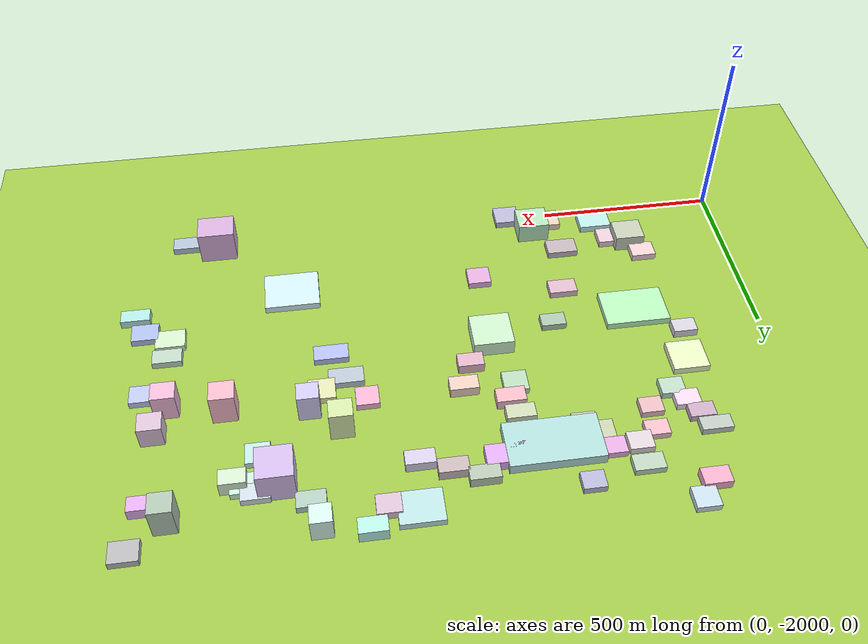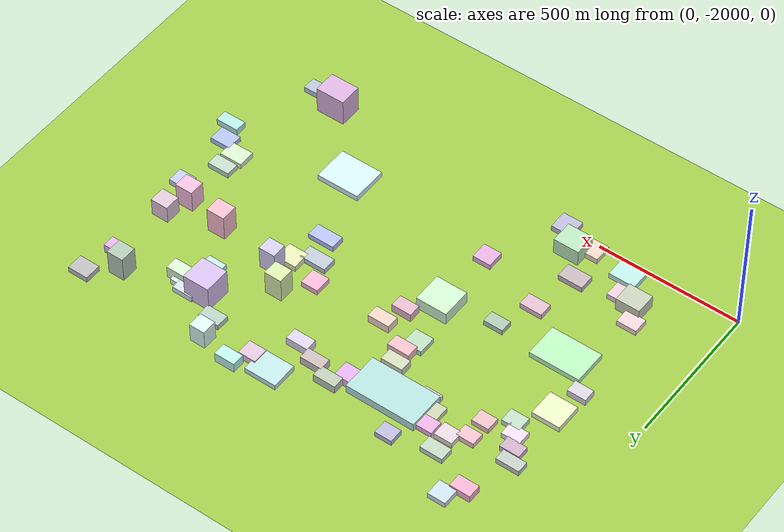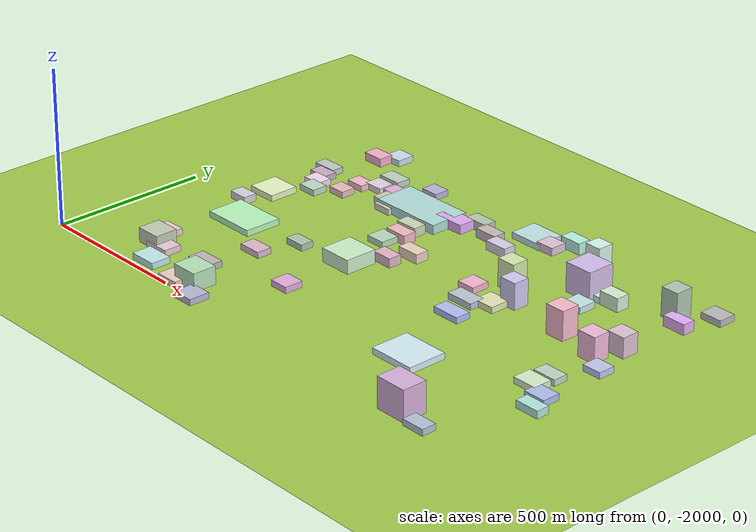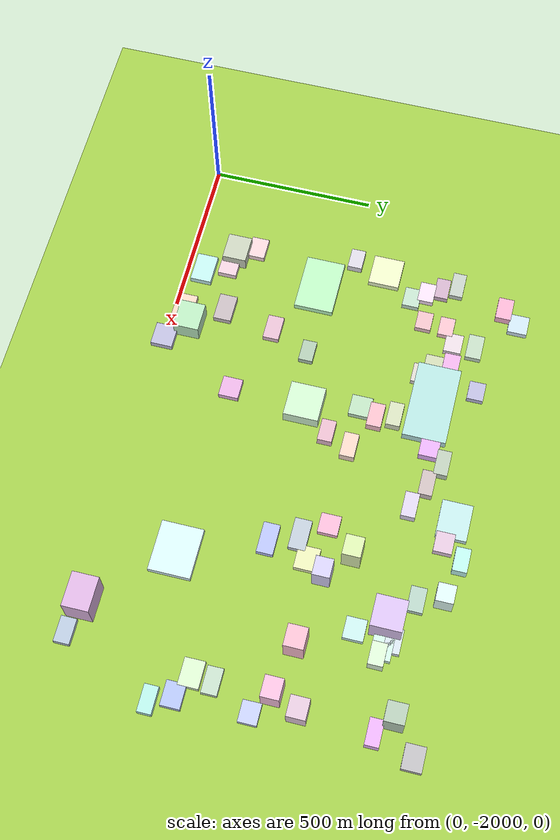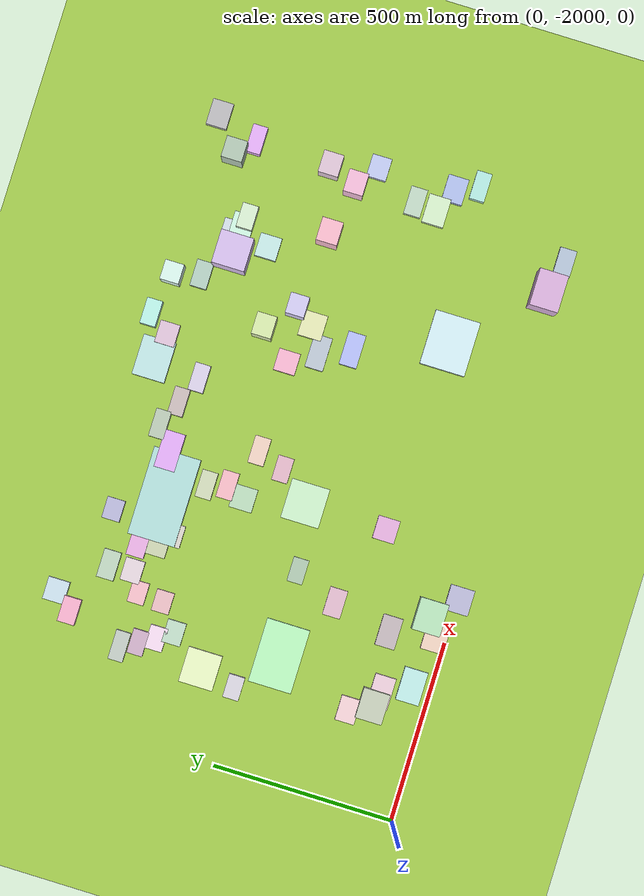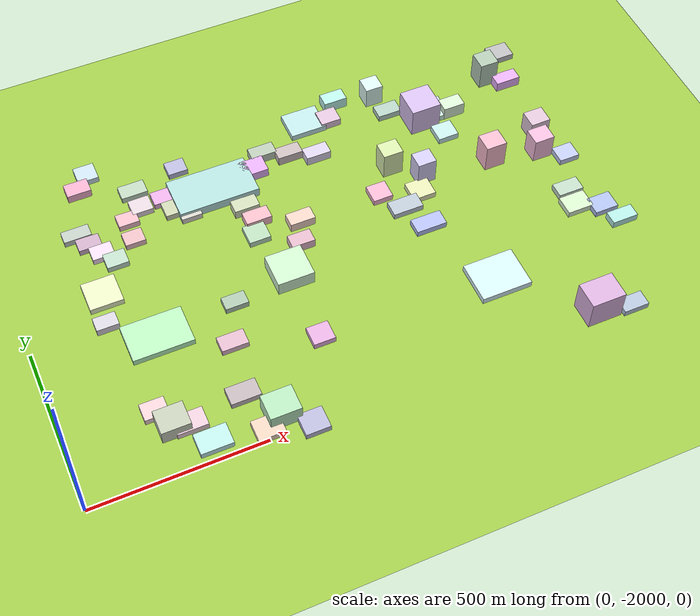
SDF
<sdf version="1.9">
 <world name="city_map">
  <model name="ground_plane">
   <static>1</static>
   <link name="link">
    <collision name="collision">
     <geometry><plane><normal>0 0 1</normal><size>11000 11000</size></plane></geometry>
    </collision>
    <visual name="visual">
     <geometry><plane><normal>0 0 1</normal><size>11000 11000</size></plane></geometry>
     <material>
      <ambient>0.551 0.712 0.210 1</ambient>
      <diffuse>0.651 0.812 0.310 1</diffuse>
      <specular>0.1 0.1 0.05 1</specular>
     </material>
    </visual>
   </link>
  </model>
  <model name="building_885923966">
   <static>1</static>
   <pose>655.6731077006962 -1157.885743891491 15.0 0 0 0</pose>
   <link name="link">
    <collision name="collision">
     <geometry><box><size>245.44319999976238 131.7379915772526 30.0</size></box></geometry>
    </collision>
    <visual name="visual">
     <cast_shadows>false</cast_shadows>
     <geometry><box><size>245.44319999976238 131.7379915772526 30.0</size></box></geometry>
     <material>
      <ambient>0.619 0.794 0.780 1</ambient>
      <diffuse>0.719 0.894 0.880 1</diffuse>
      <specular>0.216 0.268 0.264 1</specular>
      <emissive>0.01 0.01 0.01 1</emissive>
     </material>
    </visual>
   </link>
  </model>
  <model name="building_51997033">
   <static>1</static>
   <pose>336.8500381687066 -1580.2356809911882 10.0 0 0 0</pose>
   <link name="link">
    <collision name="collision">
     <geometry><box><size>177.47789999973662 120.40511027394761 20</size></box></geometry>
    </collision>
    <visual name="visual">
     <cast_shadows>false</cast_shadows>
     <geometry><box><size>177.47789999973662 120.40511027394761 20</size></box></geometry>
     <material>
      <ambient>0.646 0.892 0.667 1</ambient>
      <diffuse>0.746 0.992 0.767 1</diffuse>
      <specular>0.224 0.298 0.230 1</specular>
      <emissive>0.01 0.01 0.01 1</emissive>
     </material>
    </visual>
   </link>
  </model>
  <model name="building_834223518">
   <static>1</static>
   <pose>1280.9858252648842 -1774.0028959987128 10.0 0 0 0</pose>
   <link name="link">
    <collision name="collision">
     <geometry><box><size>152.26980000012702 126.23402840912682 20</size></box></geometry>
    </collision>
    <visual name="visual">
     <cast_shadows>false</cast_shadows>
     <geometry><box><size>152.26980000012702 126.23402840912682 20</size></box></geometry>
     <material>
      <ambient>0.752 0.861 0.890 1</ambient>
      <diffuse>0.852 0.961 0.990 1</diffuse>
      <specular>0.256 0.288 0.297 1</specular>
      <emissive>0.01 0.01 0.01 1</emissive>
     </material>
    </visual>
   </link>
  </model>
  <model name="building_282515272">
   <static>1</static>
   <pose>750.0463463687053 -1526.893520957059 22.54410202336998 0 0 0</pose>
   <link name="link">
    <collision name="collision">
     <geometry><box><size>109.7761254570354 106.22699999996144 45.08820404673996</size></box></geometry>
    </collision>
    <visual name="visual">
     <cast_shadows>false</cast_shadows>
     <geometry><box><size>109.7761254570354 106.22699999996144 45.08820404673996</size></box></geometry>
     <material>
      <ambient>0.726 0.868 0.721 1</ambient>
      <diffuse>0.826 0.968 0.821 1</diffuse>
      <specular>0.248 0.290 0.246 1</specular>
      <emissive>0.01 0.01 0.01 1</emissive>
     </material>
    </visual>
   </link>
  </model>
  <model name="building_90675372">
   <static>1</static>
   <pose>1004.8485376697569 -1019.4470012184622 10.0 0 0 0</pose>
   <link name="link">
    <collision name="collision">
     <geometry><box><size>112.64937062081091 91.33080000018623 20</size></box></geometry>
    </collision>
    <visual name="visual">
     <cast_shadows>false</cast_shadows>
     <geometry><box><size>112.64937062081091 91.33080000018623 20</size></box></geometry>
     <material>
      <ambient>0.675 0.822 0.822 1</ambient>
      <diffuse>0.775 0.922 0.922 1</diffuse>
      <specular>0.232 0.277 0.277 1</specular>
      <emissive>0.01 0.01 0.01 1</emissive>
     </material>
    </visual>
   </link>
  </model>
  <model name="building_26250149">
   <static>1</static>
   <pose>241.06221409688132 -1387.7989173229182 10.0 0 0 0</pose>
   <link name="link">
    <collision name="collision">
     <geometry><box><size>97.76879999970589 95.0312720382881 20</size></box></geometry>
    </collision>
    <visual name="visual">
     <cast_shadows>false</cast_shadows>
     <geometry><box><size>97.76879999970589 95.0312720382881 20</size></box></geometry>
     <material>
      <ambient>0.836 0.892 0.693 1</ambient>
      <diffuse>0.936 0.992 0.793 1</diffuse>
      <specular>0.281 0.298 0.238 1</specular>
      <emissive>0.01 0.01 0.01 1</emissive>
     </material>
    </visual>
   </link>
  </model>
  <model name="building_274391688">
   <static>1</static>
   <pose>1340.412388567909 -1141.6744502109484 47.136182500253476 0 0 0</pose>
   <link name="link">
    <collision name="collision">
     <geometry><box><size>93.10679999964577 91.6483943964673 94.27236500050695</size></box></geometry>
    </collision>
    <visual name="visual">
     <cast_shadows>false</cast_shadows>
     <geometry><box><size>93.10679999964577 91.6483943964673 94.27236500050695</size></box></geometry>
     <material>
      <ambient>0.759 0.667 0.849 1</ambient>
      <diffuse>0.859 0.767 0.949 1</diffuse>
      <specular>0.258 0.230 0.285 1</specular>
      <emissive>0.01 0.01 0.01 1</emissive>
     </material>
    </visual>
   </link>
  </model>
  <model name="building_586973007">
   <static>1</static>
   <pose>1486.3382346132405 -1982.8128180515678 48.82688103741594 0 0 0</pose>
   <link name="link">
    <collision name="collision">
     <geometry><box><size>102.76611107530361 79.48709999980252 97.65376207483187</size></box></geometry>
    </collision>
    <visual name="visual">
     <cast_shadows>false</cast_shadows>
     <geometry><box><size>102.76611107530361 79.48709999980252 97.65376207483187</size></box></geometry>
     <material>
      <ambient>0.770 0.613 0.784 1</ambient>
      <diffuse>0.870 0.713 0.884 1</diffuse>
      <specular>0.261 0.214 0.265 1</specular>
      <emissive>0.01 0.01 0.01 1</emissive>
     </material>
    </visual>
   </link>
  </model>
  <model name="building_772615340">
   <static>1</static>
   <pose>557.6522303663056 -1937.3966500992888 29.48203873487184 0 0 0</pose>
   <link name="link">
    <collision name="collision">
     <geometry><box><size>89.44379999942953 78.06862355813965 58.96407746974368</size></box></geometry>
    </collision>
    <visual name="visual">
     <cast_shadows>false</cast_shadows>
     <geometry><box><size>89.44379999942953 78.06862355813965 58.96407746974368</size></box></geometry>
     <material>
      <ambient>0.639 0.818 0.658 1</ambient>
      <diffuse>0.739 0.918 0.758 1</diffuse>
      <specular>0.222 0.275 0.227 1</specular>
      <emissive>0.01 0.01 0.01 1</emissive>
     </material>
    </visual>
   </link>
  </model>
  <model name="building_3899254">
   <static>1</static>
   <pose>283.17575084130544 -1860.0526714210832 23.62983071968444 0 0 0</pose>
   <link name="link">
    <collision name="collision">
     <geometry><box><size>83.85128254072615 73.48199999982086 47.25966143936888</size></box></geometry>
    </collision>
    <visual name="visual">
     <cast_shadows>false</cast_shadows>
     <geometry><box><size>83.85128254072615 73.48199999982086 47.25966143936888</size></box></geometry>
     <material>
      <ambient>0.693 0.723 0.644 1</ambient>
      <diffuse>0.793 0.823 0.744 1</diffuse>
      <specular>0.238 0.247 0.223 1</specular>
      <emissive>0.01 0.01 0.01 1</emissive>
     </material>
    </visual>
   </link>
  </model>
  <model name="building_665565411">
   <static>1</static>
   <pose>778.8359824664225 -1134.9715088391104 15.0 0 0 0</pose>
   <link name="link">
    <collision name="collision">
     <geometry><box><size>104.92829999977005 57.72782470868287 30.0</size></box></geometry>
    </collision>
    <visual name="visual">
     <cast_shadows>false</cast_shadows>
     <geometry><box><size>104.92829999977005 57.72782470868287 30.0</size></box></geometry>
     <material>
      <ambient>0.808 0.601 0.891 1</ambient>
      <diffuse>0.908 0.701 0.991 1</diffuse>
      <specular>0.273 0.210 0.297 1</specular>
      <emissive>0.01 0.01 0.01 1</emissive>
     </material>
    </visual>
   </link>
  </model>
  <model name="building_292497935">
   <static>1</static>
   <pose>364.0755688910507 -1946.4264194396712 10.0 0 0 0</pose>
   <link name="link">
    <collision name="collision">
     <geometry><box><size>92.40750000014941 64.70386823569454 20</size></box></geometry>
    </collision>
    <visual name="visual">
     <cast_shadows>false</cast_shadows>
     <geometry><box><size>92.40750000014941 64.70386823569454 20</size></box></geometry>
     <material>
      <ambient>0.667 0.847 0.833 1</ambient>
      <diffuse>0.767 0.947 0.933 1</diffuse>
      <specular>0.230 0.284 0.280 1</specular>
      <emissive>0.01 0.01 0.01 1</emissive>
     </material>
    </visual>
   </link>
  </model>
  <model name="building_149548858">
   <static>1</static>
   <pose>1406.4789679360867 -1140.9563163107252 10.0 0 0 0</pose>
   <link name="link">
    <collision name="collision">
     <geometry><box><size>95.62649999990924 59.410068002270386 20</size></box></geometry>
    </collision>
    <visual name="visual">
     <cast_shadows>false</cast_shadows>
     <geometry><box><size>95.62649999990924 59.410068002270386 20</size></box></geometry>
     <material>
      <ambient>0.733 0.891 0.808 1</ambient>
      <diffuse>0.833 0.991 0.908 1</diffuse>
      <specular>0.250 0.297 0.272 1</specular>
      <emissive>0.01 0.01 0.01 1</emissive>
     </material>
    </visual>
   </link>
  </model>
  <model name="building_43439514">
   <static>1</static>
   <pose>325.4234464116073 -1872.29053794742 10.0 0 0 0</pose>
   <link name="link">
    <collision name="collision">
     <geometry><box><size>87.98969999978823 57.84461864287709 20</size></box></geometry>
    </collision>
    <visual name="visual">
     <cast_shadows>false</cast_shadows>
     <geometry><box><size>87.98969999978823 57.84461864287709 20</size></box></geometry>
     <material>
      <ambient>0.840 0.726 0.775 1</ambient>
      <diffuse>0.940 0.826 0.875 1</diffuse>
      <specular>0.282 0.248 0.262 1</specular>
      <emissive>0.01 0.01 0.01 1</emissive>
     </material>
    </visual>
   </link>
  </model>
  <model name="building_329325230">
   <static>1</static>
   <pose>507.7307768161253 -1969.6751606032083 10.0 0 0 0</pose>
   <link name="link">
    <collision name="collision">
     <geometry><box><size>77.76527297631499 63.62520000057259 20</size></box></geometry>
    </collision>
    <visual name="visual">
     <cast_shadows>false</cast_shadows>
     <geometry><box><size>77.76527297631499 63.62520000057259 20</size></box></geometry>
     <material>
      <ambient>0.860 0.750 0.677 1</ambient>
      <diffuse>0.960 0.850 0.777 1</diffuse>
      <specular>0.288 0.255 0.233 1</specular>
      <emissive>0.01 0.01 0.01 1</emissive>
     </material>
    </visual>
   </link>
  </model>
  <model name="building_492137236">
   <static>1</static>
   <pose>1614.540512678571 -1632.9368925504778 10.0 0 0 0</pose>
   <link name="link">
    <collision name="collision">
     <geometry><box><size>80.04352668445246 60.62819999946356 20</size></box></geometry>
    </collision>
    <visual name="visual">
     <cast_shadows>false</cast_shadows>
     <geometry><box><size>80.04352668445246 60.62819999946356 20</size></box></geometry>
     <material>
      <ambient>0.764 0.865 0.722 1</ambient>
      <diffuse>0.864 0.965 0.822 1</diffuse>
      <specular>0.259 0.290 0.247 1</specular>
      <emissive>0.01 0.01 0.01 1</emissive>
     </material>
    </visual>
   </link>
  </model>
  <model name="building_83868060">
   <static>1</static>
   <pose>622.9773181012521 -2001.5847225839418 10.0 0 0 0</pose>
   <link name="link">
    <collision name="collision">
     <geometry><box><size>71.10346074487816 66.85530000046214 20</size></box></geometry>
    </collision>
    <visual name="visual">
     <cast_shadows>false</cast_shadows>
     <geometry><box><size>71.10346074487816 66.85530000046214 20</size></box></geometry>
     <material>
      <ambient>0.650 0.646 0.769 1</ambient>
      <diffuse>0.750 0.746 0.869 1</diffuse>
      <specular>0.225 0.224 0.261 1</specular>
      <emissive>0.01 0.01 0.01 1</emissive>
     </material>
    </visual>
   </link>
  </model>
  <model name="building_51533591">
   <static>1</static>
   <pose>1151.514503092457 -1440.9694946418651 10.0 0 0 0</pose>
   <link name="link">
    <collision name="collision">
     <geometry><box><size>93.13373706301033 50.882399999935046 20</size></box></geometry>
    </collision>
    <visual name="visual">
     <cast_shadows>false</cast_shadows>
     <geometry><box><size>93.13373706301033 50.882399999935046 20</size></box></geometry>
     <material>
      <ambient>0.660 0.704 0.751 1</ambient>
      <diffuse>0.760 0.804 0.851 1</diffuse>
      <specular>0.228 0.241 0.255 1</specular>
      <emissive>0.01 0.01 0.01 1</emissive>
     </material>
    </visual>
   </link>
  </model>
  <model name="building_885729434">
   <static>1</static>
   <pose>485.6572206805797 -1844.8780233309217 10.0 0 0 0</pose>
   <link name="link">
    <collision name="collision">
     <geometry><box><size>86.48615679808526 54.7007999996012 20</size></box></geometry>
    </collision>
    <visual name="visual">
     <cast_shadows>false</cast_shadows>
     <geometry><box><size>86.48615679808526 54.7007999996012 20</size></box></geometry>
     <material>
      <ambient>0.681 0.637 0.655 1</ambient>
      <diffuse>0.781 0.737 0.755 1</diffuse>
      <specular>0.234 0.221 0.226 1</specular>
      <emissive>0.01 0.01 0.01 1</emissive>
     </material>
    </visual>
   </link>
  </model>
  <model name="building_773361108">
   <static>1</static>
   <pose>1217.3259575790225 -1404.1665010802028 10.0 0 0 0</pose>
   <link name="link">
    <collision name="collision">
     <geometry><box><size>70.87350000009707 65.64923522007581 20</size></box></geometry>
    </collision>
    <visual name="visual">
     <cast_shadows>false</cast_shadows>
     <geometry><box><size>70.87350000009707 65.64923522007581 20</size></box></geometry>
     <material>
      <ambient>0.821 0.837 0.635 1</ambient>
      <diffuse>0.921 0.937 0.735 1</diffuse>
      <specular>0.276 0.281 0.221 1</specular>
      <emissive>0.01 0.01 0.01 1</emissive>
     </material>
    </visual>
   </link>
  </model>
  <model name="building_843778769">
   <static>1</static>
   <pose>1185.7341885848596 -1526.478820904895 10.0 0 0 0</pose>
   <link name="link">
    <collision name="collision">
     <geometry><box><size>93.1955999998948 49.31409842581816 20</size></box></geometry>
    </collision>
    <visual name="visual">
     <cast_shadows>false</cast_shadows>
     <geometry><box><size>93.1955999998948 49.31409842581816 20</size></box></geometry>
     <material>
      <ambient>0.630 0.669 0.897 1</ambient>
      <diffuse>0.730 0.769 0.997 1</diffuse>
      <specular>0.219 0.231 0.299 1</specular>
      <emissive>0.01 0.01 0.01 1</emissive>
     </material>
    </visual>
   </link>
  </model>
  <model name="building_447495902">
   <static>1</static>
   <pose>1693.7390217909217 -993.2008684340839 10.5 0 0 0</pose>
   <link name="link">
    <collision name="collision">
     <geometry><box><size>72.44969999958784 57.84105427578032 21.0</size></box></geometry>
    </collision>
    <visual name="visual">
     <cast_shadows>false</cast_shadows>
     <geometry><box><size>72.44969999958784 57.84105427578032 21.0</size></box></geometry>
     <material>
      <ambient>0.653 0.652 0.665 1</ambient>
      <diffuse>0.753 0.752 0.765 1</diffuse>
      <specular>0.226 0.225 0.229 1</specular>
      <emissive>0.01 0.01 0.01 1</emissive>
     </material>
    </visual>
   </link>
  </model>
  <model name="building_297966106">
   <static>1</static>
   <pose>1683.9591965992092 -1665.514146758331 10.0 0 0 0</pose>
   <link name="link">
    <collision name="collision">
     <geometry><box><size>72.7064919225762 57.22049999986467 20</size></box></geometry>
    </collision>
    <visual name="visual">
     <cast_shadows>false</cast_shadows>
     <geometry><box><size>72.7064919225762 57.22049999986467 20</size></box></geometry>
     <material>
      <ambient>0.611 0.672 0.850 1</ambient>
      <diffuse>0.711 0.772 0.950 1</diffuse>
      <specular>0.213 0.232 0.285 1</specular>
      <emissive>0.01 0.01 0.01 1</emissive>
     </material>
    </visual>
   </link>
  </model>
  <model name="building_223950437">
   <static>1</static>
   <pose>714.3866004936485 -1362.6101027905859 10.0 0 0 0</pose>
   <link name="link">
    <collision name="collision">
     <geometry><box><size>65.04056740771281 63.93600000026112 20</size></box></geometry>
    </collision>
    <visual name="visual">
     <cast_shadows>false</cast_shadows>
     <geometry><box><size>65.04056740771281 63.93600000026112 20</size></box></geometry>
     <material>
      <ambient>0.655 0.785 0.664 1</ambient>
      <diffuse>0.755 0.885 0.764 1</diffuse>
      <specular>0.226 0.265 0.229 1</specular>
      <emissive>0.01 0.01 0.01 1</emissive>
     </material>
    </visual>
   </link>
  </model>
  <model name="building_198737872">
   <static>1</static>
   <pose>747.170392949465 -1756.994903560671 10.0 0 0 0</pose>
   <link name="link">
    <collision name="collision">
     <geometry><box><size>64.04699999998087 60.45142050149066 20</size></box></geometry>
    </collision>
    <visual name="visual">
     <cast_shadows>false</cast_shadows>
     <geometry><box><size>64.04699999998087 60.45142050149066 20</size></box></geometry>
     <material>
      <ambient>0.812 0.606 0.790 1</ambient>
      <diffuse>0.912 0.706 0.890 1</diffuse>
      <specular>0.273 0.212 0.267 1</specular>
      <emissive>0.01 0.01 0.01 1</emissive>
     </material>
    </visual>
   </link>
  </model>
  <model name="building_381056021">
   <static>1</static>
   <pose>1385.871325881324 -1225.8036689910798 10.0 0 0 0</pose>
   <link name="link">
    <collision name="collision">
     <geometry><box><size>64.26854619081969 60.02880000034594 20</size></box></geometry>
    </collision>
    <visual name="visual">
     <cast_shadows>false</cast_shadows>
     <geometry><box><size>64.26854619081969 60.02880000034594 20</size></box></geometry>
     <material>
      <ambient>0.697 0.839 0.829 1</ambient>
      <diffuse>0.797 0.939 0.929 1</diffuse>
      <specular>0.239 0.282 0.279 1</specular>
      <emissive>0.01 0.01 0.01 1</emissive>
     </material>
    </visual>
   </link>
  </model>
  <model name="building_649586219">
   <static>1</static>
   <pose>517.901002560461 -1682.810676448399 10.0 0 0 0</pose>
   <link name="link">
    <collision name="collision">
     <geometry><box><size>78.11874961973984 49.1063999996868 20</size></box></geometry>
    </collision>
    <visual name="visual">
     <cast_shadows>false</cast_shadows>
     <geometry><box><size>78.11874961973984 49.1063999996868 20</size></box></geometry>
     <material>
      <ambient>0.800 0.651 0.723 1</ambient>
      <diffuse>0.900 0.751 0.823 1</diffuse>
      <specular>0.270 0.225 0.247 1</specular>
      <emissive>0.01 0.01 0.01 1</emissive>
     </material>
    </visual>
   </link>
  </model>
  <model name="building_954237924">
   <static>1</static>
   <pose>1466.1229231877285 -1374.890601307974 46.56002387992859 0 0 0</pose>
   <link name="link">
    <collision name="collision">
     <geometry><box><size>64.71299999987679 58.52119675202356 93.12004775985719</size></box></geometry>
    </collision>
    <visual name="visual">
     <cast_shadows>false</cast_shadows>
     <geometry><box><size>64.71299999987679 58.52119675202356 93.12004775985719</size></box></geometry>
     <material>
      <ambient>0.900 0.655 0.725 1</ambient>
      <diffuse>1.000 0.755 0.825 1</diffuse>
      <specular>0.300 0.226 0.247 1</specular>
      <emissive>0.01 0.01 0.01 1</emissive>
     </material>
    </visual>
   </link>
  </model>
  <model name="building_521137734">
   <static>1</static>
   <pose>436.37700498365183 -1068.5965884451662 10.0 0 0 0</pose>
   <link name="link">
    <collision name="collision">
     <geometry><box><size>79.29782852595308 47.67450000030493 20</size></box></geometry>
    </collision>
    <visual name="visual">
     <cast_shadows>false</cast_shadows>
     <geometry><box><size>79.29782852595308 47.67450000030493 20</size></box></geometry>
     <material>
      <ambient>0.670 0.758 0.673 1</ambient>
      <diffuse>0.770 0.858 0.773 1</diffuse>
      <specular>0.231 0.258 0.232 1</specular>
      <emissive>0.01 0.01 0.01 1</emissive>
     </material>
    </visual>
   </link>
  </model>
  <model name="building_932092404">
   <static>1</static>
   <pose>328.1378306926444 -953.1270817218816 10.0 0 0 0</pose>
   <link name="link">
    <collision name="collision">
     <geometry><box><size>62.21549999987275 59.67812148098055 20</size></box></geometry>
    </collision>
    <visual name="visual">
     <cast_shadows>false</cast_shadows>
     <geometry><box><size>62.21549999987275 59.67812148098055 20</size></box></geometry>
     <material>
      <ambient>0.718 0.800 0.849 1</ambient>
      <diffuse>0.818 0.900 0.949 1</diffuse>
      <specular>0.245 0.270 0.285 1</specular>
      <emissive>0.01 0.01 0.01 1</emissive>
     </material>
    </visual>
   </link>
  </model>
  <model name="building_585981795">
   <static>1</static>
   <pose>252.40545459541482 -1800.4640162320084 10.0 0 0 0</pose>
   <link name="link">
    <collision name="collision">
     <geometry><box><size>69.06654186878494 53.66850000015688 20</size></box></geometry>
    </collision>
    <visual name="visual">
     <cast_shadows>false</cast_shadows>
     <geometry><box><size>69.06654186878494 53.66850000015688 20</size></box></geometry>
     <material>
      <ambient>0.874 0.744 0.761 1</ambient>
      <diffuse>0.974 0.844 0.861 1</diffuse>
      <specular>0.292 0.253 0.258 1</specular>
      <emissive>0.01 0.01 0.01 1</emissive>
     </material>
    </visual>
   </link>
  </model>
  <model name="building_795210987">
   <static>1</static>
   <pose>1621.0704368313507 -1572.180013513026 10.0 0 0 0</pose>
   <link name="link">
    <collision name="collision">
     <geometry><box><size>78.5990999996784 46.34176278336739 20</size></box></geometry>
    </collision>
    <visual name="visual">
     <cast_shadows>false</cast_shadows>
     <geometry><box><size>78.5990999996784 46.34176278336739 20</size></box></geometry>
     <material>
      <ambient>0.680 0.771 0.699 1</ambient>
      <diffuse>0.780 0.871 0.799 1</diffuse>
      <specular>0.234 0.261 0.240 1</specular>
      <emissive>0.01 0.01 0.01 1</emissive>
     </material>
    </visual>
   </link>
  </model>
  <model name="building_709147309">
   <static>1</static>
   <pose>1102.1588562136244 -1366.2804004534398 10.0 0 0 0</pose>
   <link name="link">
    <collision name="collision">
     <geometry><box><size>60.61710000012255 59.838463500407514 20</size></box></geometry>
    </collision>
    <visual name="visual">
     <cast_shadows>false</cast_shadows>
     <geometry><box><size>60.61710000012255 59.838463500407514 20</size></box></geometry>
     <material>
      <ambient>0.890 0.637 0.745 1</ambient>
      <diffuse>0.990 0.737 0.845 1</diffuse>
      <specular>0.297 0.221 0.253 1</specular>
      <emissive>0.01 0.01 0.01 1</emissive>
     </material>
    </visual>
   </link>
  </model>
  <model name="building_781203244">
   <static>1</static>
   <pose>1582.0657837439587 -2007.6592416446827 10.0 0 0 0</pose>
   <link name="link">
    <collision name="collision">
     <geometry><box><size>75.73530000012596 46.67706275832728 20</size></box></geometry>
    </collision>
    <visual name="visual">
     <cast_shadows>false</cast_shadows>
     <geometry><box><size>75.73530000012596 46.67706275832728 20</size></box></geometry>
     <material>
      <ambient>0.628 0.688 0.768 1</ambient>
      <diffuse>0.728 0.788 0.868 1</diffuse>
      <specular>0.218 0.236 0.260 1</specular>
      <emissive>0.01 0.01 0.01 1</emissive>
     </material>
    </visual>
   </link>
  </model>
  <model name="building_436593931">
   <static>1</static>
   <pose>1681.3186051341538 -1450.3710256885224 10.0 0 0 0</pose>
   <link name="link">
    <collision name="collision">
     <geometry><box><size>62.954038995238 54.700800000389904 20</size></box></geometry>
    </collision>
    <visual name="visual">
     <cast_shadows>false</cast_shadows>
     <geometry><box><size>62.954038995238 54.700800000389904 20</size></box></geometry>
     <material>
      <ambient>0.680 0.716 0.869 1</ambient>
      <diffuse>0.780 0.816 0.969 1</diffuse>
      <specular>0.234 0.245 0.291 1</specular>
      <emissive>0.01 0.01 0.01 1</emissive>
     </material>
    </visual>
   </link>
  </model>
  <model name="building_903363906">
   <static>1</static>
   <pose>1261.508926626537 -1075.6063166224824 10.5 0 0 0</pose>
   <link name="link">
    <collision name="collision">
     <geometry><box><size>74.10359999998661 46.458775925187204 21.0</size></box></geometry>
    </collision>
    <visual name="visual">
     <cast_shadows>false</cast_shadows>
     <geometry><box><size>74.10359999998661 46.458775925187204 21.0</size></box></geometry>
     <material>
      <ambient>0.628 0.735 0.684 1</ambient>
      <diffuse>0.728 0.835 0.784 1</diffuse>
      <specular>0.218 0.251 0.235 1</specular>
      <emissive>0.01 0.01 0.01 1</emissive>
     </material>
    </visual>
   </link>
  </model>
  <model name="building_916105324">
   <static>1</static>
   <pose>735.6807318548769 -1312.0436815955945 15.0 0 0 0</pose>
   <link name="link">
    <collision name="collision">
     <geometry><box><size>76.7954354449597 44.8218000000935 30.0</size></box></geometry>
    </collision>
    <visual name="visual">
     <cast_shadows>false</cast_shadows>
     <geometry><box><size>76.7954354449597 44.8218000000935 30.0</size></box></geometry>
     <material>
      <ambient>0.883 0.655 0.699 1</ambient>
      <diffuse>0.983 0.755 0.799 1</diffuse>
      <specular>0.295 0.227 0.240 1</specular>
      <emissive>0.01 0.01 0.01 1</emissive>
     </material>
    </visual>
   </link>
  </model>
  <model name="building_589525663">
   <static>1</static>
   <pose>1646.159563274206 -1323.6844218630479 32.363455793384425 0 0 0</pose>
   <link name="link">
    <collision name="collision">
     <geometry><box><size>61.660500000485285 55.71000638921823 64.72691158676885</size></box></geometry>
    </collision>
    <visual name="visual">
     <cast_shadows>false</cast_shadows>
     <geometry><box><size>61.660500000485285 55.71000638921823 64.72691158676885</size></box></geometry>
     <material>
      <ambient>0.792 0.691 0.763 1</ambient>
      <diffuse>0.892 0.791 0.863 1</diffuse>
      <specular>0.268 0.237 0.259 1</specular>
      <emissive>0.01 0.01 0.01 1</emissive>
     </material>
    </visual>
   </link>
  </model>
  <model name="building_460170176">
   <static>1</static>
   <pose>1392.7964595226465 -1114.4444805995124 10.0 0 0 0</pose>
   <link name="link">
    <collision name="collision">
     <geometry><box><size>72.88259999991453 47.07382061064194 20</size></box></geometry>
    </collision>
    <visual name="visual">
     <cast_shadows>false</cast_shadows>
     <geometry><box><size>72.88259999991453 47.07382061064194 20</size></box></geometry>
     <material>
      <ambient>0.748 0.795 0.832 1</ambient>
      <diffuse>0.848 0.895 0.932 1</diffuse>
      <specular>0.254 0.268 0.280 1</specular>
      <emissive>0.01 0.01 0.01 1</emissive>
     </material>
    </visual>
   </link>
  </model>
  <model name="building_177703846">
   <static>1</static>
   <pose>287.5643680749748 -1003.6438193959075 13.5 0 0 0</pose>
   <link name="link">
    <collision name="collision">
     <geometry><box><size>71.73929999996176 47.802336439394146 27.0</size></box></geometry>
    </collision>
    <visual name="visual">
     <cast_shadows>false</cast_shadows>
     <geometry><box><size>71.73929999996176 47.802336439394146 27.0</size></box></geometry>
     <material>
      <ambient>0.884 0.611 0.724 1</ambient>
      <diffuse>0.984 0.711 0.824 1</diffuse>
      <specular>0.295 0.213 0.247 1</specular>
      <emissive>0.01 0.01 0.01 1</emissive>
     </material>
    </visual>
   </link>
  </model>
  <model name="building_876701189">
   <static>1</static>
   <pose>1602.8361684011165 -1065.1436153234083 46.1594202576586 0 0 0</pose>
   <link name="link">
    <collision name="collision">
     <geometry><box><size>59.018699999583646 57.909553674064156 92.3188405153172</size></box></geometry>
    </collision>
    <visual name="visual">
     <cast_shadows>false</cast_shadows>
     <geometry><box><size>59.018699999583646 57.909553674064156 92.3188405153172</size></box></geometry>
     <material>
      <ambient>0.618 0.703 0.626 1</ambient>
      <diffuse>0.718 0.803 0.726 1</diffuse>
      <specular>0.215 0.241 0.218 1</specular>
      <emissive>0.01 0.01 0.01 1</emissive>
     </material>
    </visual>
   </link>
  </model>
  <model name="building_62045317">
   <static>1</static>
   <pose>1079.7785471278967 -1034.542771511131 12.753098902321 0 0 0</pose>
   <link name="link">
    <collision name="collision">
     <geometry><box><size>62.22660000000246 54.78802771322111 25.506197804642</size></box></geometry>
    </collision>
    <visual name="visual">
     <cast_shadows>false</cast_shadows>
     <geometry><box><size>62.22660000000246 54.78802771322111 25.506197804642</size></box></geometry>
     <material>
      <ambient>0.796 0.688 0.775 1</ambient>
      <diffuse>0.896 0.788 0.875 1</diffuse>
      <specular>0.269 0.236 0.263 1</specular>
      <emissive>0.01 0.01 0.01 1</emissive>
     </material>
    </visual>
   </link>
  </model>
  <model name="building_828210147">
   <static>1</static>
   <pose>849.7476740691618 -1366.6642262107748 15.0 0 0 0</pose>
   <link name="link">
    <collision name="collision">
     <geometry><box><size>76.7354991613342 44.28900000017677 30.0</size></box></geometry>
    </collision>
    <visual name="visual">
     <cast_shadows>false</cast_shadows>
     <geometry><box><size>76.7354991613342 44.28900000017677 30.0</size></box></geometry>
     <material>
      <ambient>0.864 0.748 0.689 1</ambient>
      <diffuse>0.964 0.848 0.789 1</diffuse>
      <specular>0.289 0.254 0.237 1</specular>
      <emissive>0.01 0.01 0.01 1</emissive>
     </material>
    </visual>
   </link>
  </model>
  <model name="building_432901294">
   <static>1</static>
   <pose>1614.341591149912 -1403.533498687326 40.783979891965785 0 0 0</pose>
   <link name="link">
    <collision name="collision">
     <geometry><box><size>62.406278242356 54.27900000019292 81.56795978393157</size></box></geometry>
    </collision>
    <visual name="visual">
     <cast_shadows>false</cast_shadows>
     <geometry><box><size>62.406278242356 54.27900000019292 81.56795978393157</size></box></geometry>
     <material>
      <ambient>0.875 0.658 0.777 1</ambient>
      <diffuse>0.975 0.758 0.877 1</diffuse>
      <specular>0.292 0.227 0.263 1</specular>
      <emissive>0.01 0.01 0.01 1</emissive>
     </material>
    </visual>
   </link>
  </model>
  <model name="building_825604620">
   <static>1</static>
   <pose>1173.6320705694159 -1281.2390944642834 45.16266196086952 0 0 0</pose>
   <link name="link">
    <collision name="collision">
     <geometry><box><size>61.78260000033475 54.80421764873686 90.32532392173904</size></box></geometry>
    </collision>
    <visual name="visual">
     <cast_shadows>false</cast_shadows>
     <geometry><box><size>61.78260000033475 54.80421764873686 90.32532392173904</size></box></geometry>
     <material>
      <ambient>0.766 0.841 0.600 1</ambient>
      <diffuse>0.866 0.941 0.700 1</diffuse>
      <specular>0.260 0.282 0.210 1</specular>
      <emissive>0.01 0.01 0.01 1</emissive>
     </material>
    </visual>
   </link>
  </model>
  <model name="building_418400692">
   <static>1</static>
   <pose>439.5612257090963 -1134.3176422349716 10.0 0 0 0</pose>
   <link name="link">
    <collision name="collision">
     <geometry><box><size>63.08130000052614 53.20148640132857 20</size></box></geometry>
    </collision>
    <visual name="visual">
     <cast_shadows>false</cast_shadows>
     <geometry><box><size>63.08130000052614 53.20148640132857 20</size></box></geometry>
     <material>
      <ambient>0.817 0.762 0.794 1</ambient>
      <diffuse>0.917 0.862 0.894 1</diffuse>
      <specular>0.275 0.259 0.268 1</specular>
      <emissive>0.01 0.01 0.01 1</emissive>
     </material>
    </visual>
   </link>
  </model>
  <model name="building_451710776">
   <static>1</static>
   <pose>235.36747424840263 -1160.6326292291003 10.0 0 0 0</pose>
   <link name="link">
    <collision name="collision">
     <geometry><box><size>81.77870394519296 40.8257999999293 20</size></box></geometry>
    </collision>
    <visual name="visual">
     <cast_shadows>false</cast_shadows>
     <geometry><box><size>81.77870394519296 40.8257999999293 20</size></box></geometry>
     <material>
      <ambient>0.676 0.718 0.687 1</ambient>
      <diffuse>0.776 0.818 0.787 1</diffuse>
      <specular>0.233 0.245 0.236 1</specular>
      <emissive>0.01 0.01 0.01 1</emissive>
     </material>
    </visual>
   </link>
  </model>
  <model name="building_224197891">
   <static>1</static>
   <pose>1712.832151365653 -1728.6508414966854 12.0 0 0 0</pose>
   <link name="link">
    <collision name="collision">
     <geometry><box><size>79.6868999997713 41.82322130090261 24.0</size></box></geometry>
    </collision>
    <visual name="visual">
     <cast_shadows>false</cast_shadows>
     <geometry><box><size>79.6868999997713 41.82322130090261 24.0</size></box></geometry>
     <material>
      <ambient>0.624 0.838 0.807 1</ambient>
      <diffuse>0.724 0.938 0.907 1</diffuse>
      <specular>0.217 0.281 0.272 1</specular>
      <emissive>0.01 0.01 0.01 1</emissive>
     </material>
    </visual>
   </link>
  </model>
  <model name="building_362813064">
   <static>1</static>
   <pose>719.7644070662187 -1257.185236865182 15.0 0 0 0</pose>
   <link name="link">
    <collision name="collision">
     <geometry><box><size>76.31249999977285 43.5080678982559 30.0</size></box></geometry>
    </collision>
    <visual name="visual">
     <cast_shadows>false</cast_shadows>
     <geometry><box><size>76.31249999977285 43.5080678982559 30.0</size></box></geometry>
     <material>
      <ambient>0.740 0.776 0.652 1</ambient>
      <diffuse>0.840 0.876 0.752 1</diffuse>
      <specular>0.252 0.263 0.226 1</specular>
      <emissive>0.01 0.01 0.01 1</emissive>
     </material>
    </visual>
   </link>
  </model>
  <model name="building_308342043">
   <static>1</static>
   <pose>312.6464593481855 -1291.0198002137286 10.0 0 0 0</pose>
   <link name="link">
    <collision name="collision">
     <geometry><box><size>63.92486951822085 51.51510000023052 20</size></box></geometry>
    </collision>
    <visual name="visual">
     <cast_shadows>false</cast_shadows>
     <geometry><box><size>63.92486951822085 51.51510000023052 20</size></box></geometry>
     <material>
      <ambient>0.674 0.785 0.707 1</ambient>
      <diffuse>0.774 0.885 0.807 1</diffuse>
      <specular>0.232 0.266 0.242 1</specular>
      <emissive>0.01 0.01 0.01 1</emissive>
     </material>
    </visual>
   </link>
  </model>
  <model name="building_894958872">
   <static>1</static>
   <pose>990.857916684251 -1152.8052476922755 15.0 0 0 0</pose>
   <link name="link">
    <collision name="collision">
     <geometry><box><size>76.98206131867096 42.557399999658685 30.0</size></box></geometry>
    </collision>
    <visual name="visual">
     <cast_shadows>false</cast_shadows>
     <geometry><box><size>76.98206131867096 42.557399999658685 30.0</size></box></geometry>
     <material>
      <ambient>0.777 0.742 0.839 1</ambient>
      <diffuse>0.877 0.842 0.939 1</diffuse>
      <specular>0.263 0.253 0.282 1</specular>
      <emissive>0.01 0.01 0.01 1</emissive>
     </material>
    </visual>
   </link>
  </model>
  <model name="building_214164304">
   <static>1</static>
   <pose>840.1417037371632 -1088.1179697671523 15.0 0 0 0</pose>
   <link name="link">
    <collision name="collision">
     <geometry><box><size>78.4267792024261 41.736000000312856 30.0</size></box></geometry>
    </collision>
    <visual name="visual">
     <cast_shadows>false</cast_shadows>
     <geometry><box><size>78.4267792024261 41.736000000312856 30.0</size></box></geometry>
     <material>
      <ambient>0.651 0.709 0.636 1</ambient>
      <diffuse>0.751 0.809 0.736 1</diffuse>
      <specular>0.225 0.243 0.221 1</specular>
      <emissive>0.01 0.01 0.01 1</emissive>
     </material>
    </visual>
   </link>
  </model>
  <model name="building_169483771">
   <static>1</static>
   <pose>912.895249758683 -1118.885263831076 15.0 0 0 0</pose>
   <link name="link">
    <collision name="collision">
     <geometry><box><size>77.04911574392193 41.93580000028163 30.0</size></box></geometry>
    </collision>
    <visual name="visual">
     <cast_shadows>false</cast_shadows>
     <geometry><box><size>77.04911574392193 41.93580000028163 30.0</size></box></geometry>
     <material>
      <ambient>0.713 0.653 0.655 1</ambient>
      <diffuse>0.813 0.753 0.755 1</diffuse>
      <specular>0.244 0.226 0.227 1</specular>
      <emissive>0.01 0.01 0.01 1</emissive>
     </material>
    </visual>
   </link>
  </model>
  <model name="building_470954557">
   <static>1</static>
   <pose>284.1803822582187 -1249.4907190096876 10.0 0 0 0</pose>
   <link name="link">
    <collision name="collision">
     <geometry><box><size>65.54574691509228 49.006500000096764 20</size></box></geometry>
    </collision>
    <visual name="visual">
     <cast_shadows>false</cast_shadows>
     <geometry><box><size>65.54574691509228 49.006500000096764 20</size></box></geometry>
     <material>
      <ambient>0.883 0.784 0.870 1</ambient>
      <diffuse>0.983 0.884 0.970 1</diffuse>
      <specular>0.295 0.265 0.291 1</specular>
      <emissive>0.01 0.01 0.01 1</emissive>
     </material>
    </visual>
   </link>
  </model>
  <model name="building_594888875">
   <static>1</static>
   <pose>1655.1060702971542 -1110.226980582854 16.5 0 0 0</pose>
   <link name="link">
    <collision name="collision">
     <geometry><box><size>77.41139999999547 41.18960521816503 33.0</size></box></geometry>
    </collision>
    <visual name="visual">
     <cast_shadows>false</cast_shadows>
     <geometry><box><size>77.41139999999547 41.18960521816503 33.0</size></box></geometry>
     <material>
      <ambient>0.820 0.606 0.895 1</ambient>
      <diffuse>0.920 0.706 0.995 1</diffuse>
      <specular>0.276 0.212 0.298 1</specular>
      <emissive>0.01 0.01 0.01 1</emissive>
     </material>
    </visual>
   </link>
  </model>
  <model name="building_480516055">
   <static>1</static>
   <pose>1122.1393605893911 -976.5093979954836 18.238290230167962 0 0 0</pose>
   <link name="link">
    <collision name="collision">
     <geometry><box><size>72.53849999983686 43.45161773648965 36.476580460335924</size></box></geometry>
    </collision>
    <visual name="visual">
     <cast_shadows>false</cast_shadows>
     <geometry><box><size>72.53849999983686 43.45161773648965 36.476580460335924</size></box></geometry>
     <material>
      <ambient>0.650 0.875 0.832 1</ambient>
      <diffuse>0.750 0.975 0.932 1</diffuse>
      <specular>0.225 0.293 0.280 1</specular>
      <emissive>0.01 0.01 0.01 1</emissive>
     </material>
    </visual>
   </link>
  </model>
  <model name="building_719229008">
   <static>1</static>
   <pose>820.4451737577228 -1441.7923370983792 15.0 0 0 0</pose>
   <link name="link">
    <collision name="collision">
     <geometry><box><size>69.60207200106187 44.044800000477835 30.0</size></box></geometry>
    </collision>
    <visual name="visual">
     <cast_shadows>false</cast_shadows>
     <geometry><box><size>69.60207200106187 44.044800000477835 30.0</size></box></geometry>
     <material>
      <ambient>0.807 0.640 0.706 1</ambient>
      <diffuse>0.907 0.740 0.806 1</diffuse>
      <specular>0.272 0.222 0.242 1</specular>
      <emissive>0.01 0.01 0.01 1</emissive>
     </material>
    </visual>
   </link>
  </model>
  <model name="building_582531877">
   <static>1</static>
   <pose>1445.6250108319434 -1148.7173852354304 21.893631192134468 0 0 0</pose>
   <link name="link">
    <collision name="collision">
     <geometry><box><size>67.90979999937719 44.38542333413413 43.787262384268935</size></box></geometry>
    </collision>
    <visual name="visual">
     <cast_shadows>false</cast_shadows>
     <geometry><box><size>67.90979999937719 44.38542333413413 43.787262384268935</size></box></geometry>
     <material>
      <ambient>0.770 0.862 0.747 1</ambient>
      <diffuse>0.870 0.962 0.847 1</diffuse>
      <specular>0.261 0.289 0.254 1</specular>
      <emissive>0.01 0.01 0.01 1</emissive>
     </material>
    </visual>
   </link>
  </model>
  <model name="building_897047054">
   <static>1</static>
   <pose>1252.227275113251 -1350.3133828964128 42.437293258769756 0 0 0</pose>
   <link name="link">
    <collision name="collision">
     <geometry><box><size>57.52097861243166 52.25880000024574 84.87458651753951</size></box></geometry>
    </collision>
    <visual name="visual">
     <cast_shadows>false</cast_shadows>
     <geometry><box><size>57.52097861243166 52.25880000024574 84.87458651753951</size></box></geometry>
     <material>
      <ambient>0.744 0.721 0.875 1</ambient>
      <diffuse>0.844 0.821 0.975 1</diffuse>
      <specular>0.253 0.246 0.292 1</specular>
      <emissive>0.01 0.01 0.01 1</emissive>
     </material>
    </visual>
   </link>
  </model>
  <model name="building_232390262">
   <static>1</static>
   <pose>522.8280317763242 -1179.5090799769123 10.0 0 0 0</pose>
   <link name="link">
    <collision name="collision">
     <geometry><box><size>55.31129999963724 54.20180273611753 20</size></box></geometry>
    </collision>
    <visual name="visual">
     <cast_shadows>false</cast_shadows>
     <geometry><box><size>55.31129999963724 54.20180273611753 20</size></box></geometry>
     <material>
      <ambient>0.719 0.751 0.616 1</ambient>
      <diffuse>0.819 0.851 0.716 1</diffuse>
      <specular>0.246 0.255 0.215 1</specular>
      <emissive>0.01 0.01 0.01 1</emissive>
     </material>
    </visual>
   </link>
  </model>
  <model name="building_52847973">
   <static>1</static>
   <pose>259.10003082158306 -1205.4775431458752 10.0 0 0 0</pose>
   <link name="link">
    <collision name="collision">
     <geometry><box><size>68.24074521204882 43.34550000019277 20</size></box></geometry>
    </collision>
    <visual name="visual">
     <cast_shadows>false</cast_shadows>
     <geometry><box><size>68.24074521204882 43.34550000019277 20</size></box></geometry>
     <material>
      <ambient>0.726 0.604 0.700 1</ambient>
      <diffuse>0.826 0.704 0.800 1</diffuse>
      <specular>0.248 0.211 0.240 1</specular>
      <emissive>0.01 0.01 0.01 1</emissive>
     </material>
    </visual>
   </link>
  </model>
  <model name="building_332085421">
   <static>1</static>
   <pose>582.8024975008 -1035.938885591065 10.0 0 0 0</pose>
   <link name="link">
    <collision name="collision">
     <geometry><box><size>59.368295352095764 49.57259999961394 20</size></box></geometry>
    </collision>
    <visual name="visual">
     <cast_shadows>false</cast_shadows>
     <geometry><box><size>59.368295352095764 49.57259999961394 20</size></box></geometry>
     <material>
      <ambient>0.647 0.641 0.775 1</ambient>
      <diffuse>0.747 0.741 0.875 1</diffuse>
      <specular>0.224 0.222 0.263 1</specular>
      <emissive>0.01 0.01 0.01 1</emissive>
     </material>
    </visual>
   </link>
  </model>
  <model name="building_858728278">
   <static>1</static>
   <pose>571.0225238106273 -1561.3102040025012 10.0 0 0 0</pose>
   <link name="link">
    <collision name="collision">
     <geometry><box><size>68.12417141116796 43.0014000001151 20</size></box></geometry>
    </collision>
    <visual name="visual">
     <cast_shadows>false</cast_shadows>
     <geometry><box><size>68.12417141116796 43.0014000001151 20</size></box></geometry>
     <material>
      <ambient>0.603 0.700 0.612 1</ambient>
      <diffuse>0.703 0.800 0.712 1</diffuse>
      <specular>0.211 0.240 0.214 1</specular>
      <emissive>0.01 0.01 0.01 1</emissive>
     </material>
    </visual>
   </link>
  </model>
  <model name="building_316102069">
   <static>1</static>
   <pose>506.94768841096317 -1127.6425770928247 10.0 0 0 0</pose>
   <link name="link">
    <collision name="collision">
     <geometry><box><size>59.07884219402573 49.261799999925415 20</size></box></geometry>
    </collision>
    <visual name="visual">
     <cast_shadows>false</cast_shadows>
     <geometry><box><size>59.07884219402573 49.261799999925415 20</size></box></geometry>
     <material>
      <ambient>0.833 0.607 0.814 1</ambient>
      <diffuse>0.933 0.707 0.914 1</diffuse>
      <specular>0.280 0.212 0.274 1</specular>
      <emissive>0.01 0.01 0.01 1</emissive>
     </material>
    </visual>
   </link>
  </model>
  <model name="building_845871720">
   <static>1</static>
   <pose>383.488235421376 -1237.3126506433193 10.0 0 0 0</pose>
   <link name="link">
    <collision name="collision">
     <geometry><box><size>59.78281366375847 48.57359999977007 20</size></box></geometry>
    </collision>
    <visual name="visual">
     <cast_shadows>false</cast_shadows>
     <geometry><box><size>59.78281366375847 48.57359999977007 20</size></box></geometry>
     <material>
      <ambient>0.836 0.664 0.688 1</ambient>
      <diffuse>0.936 0.764 0.788 1</diffuse>
      <specular>0.281 0.229 0.236 1</specular>
      <emissive>0.01 0.01 0.01 1</emissive>
     </material>
    </visual>
   </link>
  </model>
  <model name="building_381892705">
   <static>1</static>
   <pose>220.16533080445524 -1488.3911371459512 12.0 0 0 0</pose>
   <link name="link">
    <collision name="collision">
     <geometry><box><size>65.00858213178994 44.41110000002624 24.0</size></box></geometry>
    </collision>
    <visual name="visual">
     <cast_shadows>false</cast_shadows>
     <geometry><box><size>65.00858213178994 44.41110000002624 24.0</size></box></geometry>
     <material>
      <ambient>0.765 0.752 0.794 1</ambient>
      <diffuse>0.865 0.852 0.894 1</diffuse>
      <specular>0.260 0.255 0.268 1</specular>
      <emissive>0.01 0.01 0.01 1</emissive>
     </material>
    </visual>
   </link>
  </model>
  <model name="building_500449885">
   <static>1</static>
   <pose>1239.9183215010453 -1000.9196818230862 35.275777934825214 0 0 0</pose>
   <link name="link">
    <collision name="collision">
     <geometry><box><size>54.789599999850225 52.693311913585106 70.55155586965043</size></box></geometry>
    </collision>
    <visual name="visual">
     <cast_shadows>false</cast_shadows>
     <geometry><box><size>54.789599999850225 52.693311913585106 70.55155586965043</size></box></geometry>
     <material>
      <ambient>0.775 0.890 0.855 1</ambient>
      <diffuse>0.875 0.990 0.955 1</diffuse>
      <specular>0.262 0.297 0.287 1</specular>
      <emissive>0.01 0.01 0.01 1</emissive>
     </material>
    </visual>
   </link>
  </model>
  <model name="building_418120335">
   <static>1</static>
   <pose>387.8807476004599 -1166.5059452553126 10.0 0 0 0</pose>
   <link name="link">
    <collision name="collision">
     <geometry><box><size>61.671600000615 46.00023364737777 20</size></box></geometry>
    </collision>
    <visual name="visual">
     <cast_shadows>false</cast_shadows>
     <geometry><box><size>61.671600000615 46.00023364737777 20</size></box></geometry>
     <material>
      <ambient>0.880 0.670 0.711 1</ambient>
      <diffuse>0.980 0.770 0.811 1</diffuse>
      <specular>0.294 0.231 0.243 1</specular>
      <emissive>0.01 0.01 0.01 1</emissive>
     </material>
    </visual>
   </link>
  </model>
  <model name="building_347963134">
   <static>1</static>
   <pose>563.9371283238657 -1214.0061940196283 10.0 0 0 0</pose>
   <link name="link">
    <collision name="collision">
     <geometry><box><size>61.937999999784665 45.47361885382548 20</size></box></geometry>
    </collision>
    <visual name="visual">
     <cast_shadows>false</cast_shadows>
     <geometry><box><size>61.937999999784665 45.47361885382548 20</size></box></geometry>
     <material>
      <ambient>0.771 0.751 0.721 1</ambient>
      <diffuse>0.871 0.851 0.821 1</diffuse>
      <specular>0.261 0.255 0.246 1</specular>
      <emissive>0.01 0.01 0.01 1</emissive>
     </material>
    </visual>
   </link>
  </model>
 </world>
</sdf>
